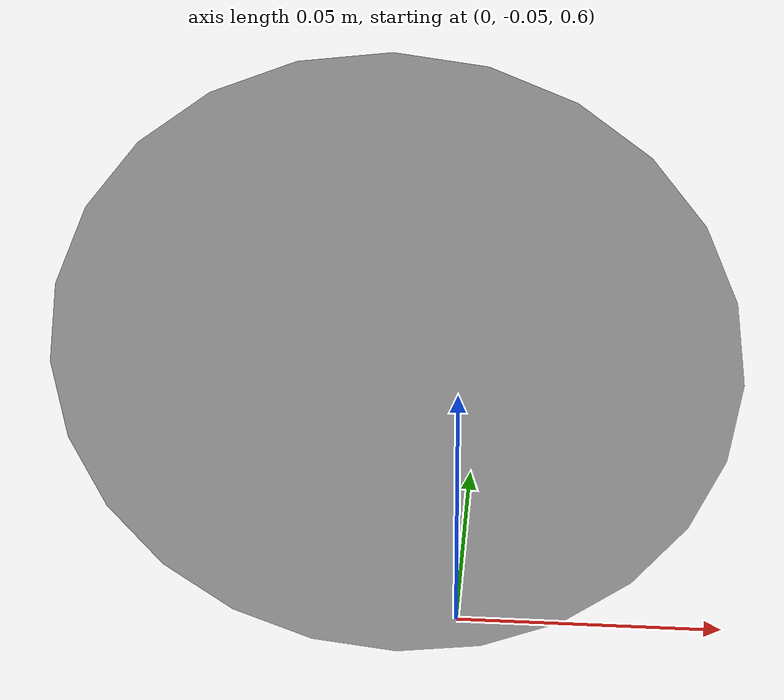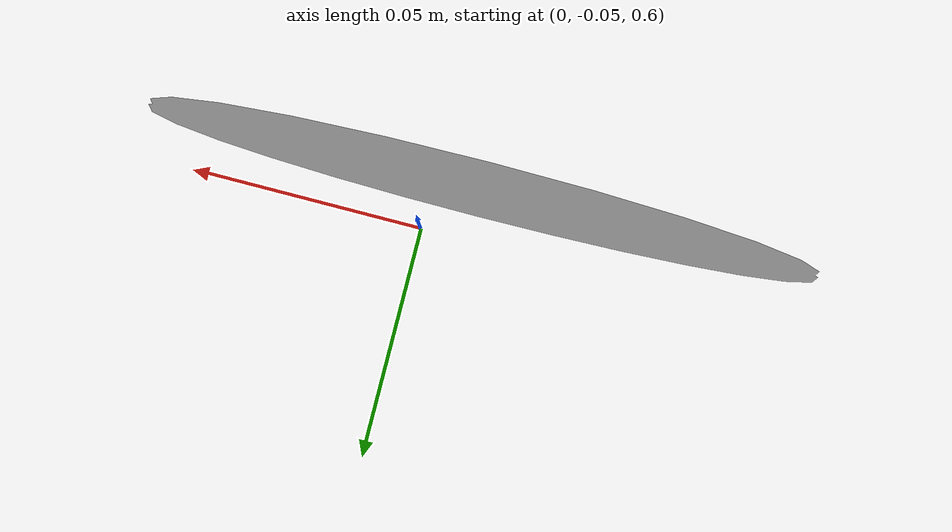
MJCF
<mujoco model="original-12">
  <default>
    <default class="visual">
      <geom group="2" type="mesh" contype="0" conaffinity="0"/>
    </default>
    <default class="collision">
      <geom group="3" type="mesh"/>
    </default>
  </default>
  <asset>
    <material name="material_0_0" specular="0.06666666666666667" shininess="0.03" rgba="0.7764705882352941 0.7764705882352941 0.7764705882352941 1"/>
    <mesh file="original-12.obj"/>
  </asset>
  <worldbody>
    <body name="original-12">
      <geom material="material_0_0" mesh="original-12" class="visual"/>
      <geom mesh="original-12" class="collision"/>
    </body>
  </worldbody>
</mujoco>
